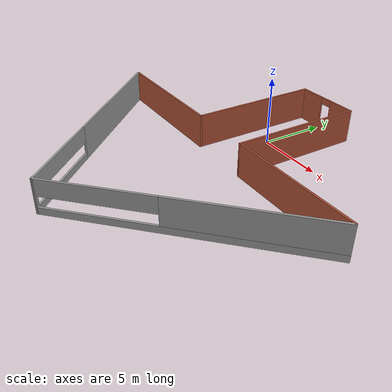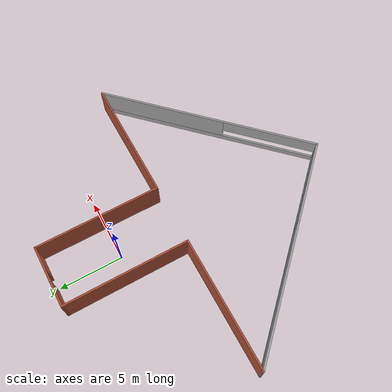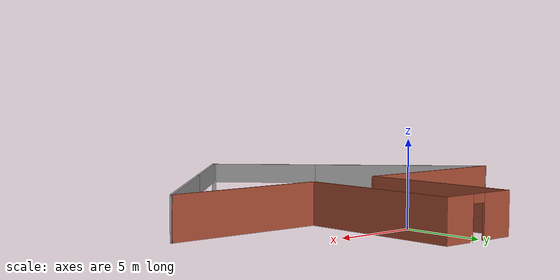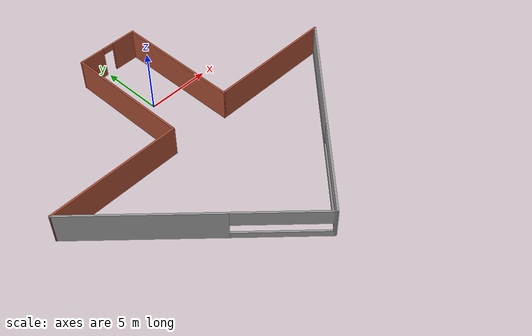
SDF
<?xml version='1.0'?>
<sdf version='1.6'>
  <model name='FOR_PROJECT_1'>
    <pose frame=''>0.143217 -6.05993 0 0 -0 0</pose>
    <link name='Wall_12'>
      <collision name='Wall_12_Collision'>
        <geometry>
          <box>
            <size>10 0.15 2.5</size>
          </box>
        </geometry>
        <pose frame=''>0 0 1.25 0 -0 0</pose>
      </collision>
      <visual name='Wall_12_Visual'>
        <pose frame=''>0 0 1.25 0 -0 0</pose>
        <geometry>
          <box>
            <size>10 0.15 2.5</size>
          </box>
        </geometry>
        <material>
          <script>
            <uri>file://media/materials/scripts/gazebo.material</uri>
            <name>Gazebo/Bricks</name>
          </script>
          <ambient>1 1 1 1</ambient>
        </material>
        <meta>
          <layer>0</layer>
        </meta>
      </visual>
      <pose frame=''>7.5816 1.45376 0 0 -0 0</pose>
    </link>
    <link name='Wall_19'>
      <collision name='Wall_19_Collision'>
        <geometry>
          <box>
            <size>10 0.15 2.5</size>
          </box>
        </geometry>
        <pose frame=''>0 0 1.25 0 -0 0</pose>
      </collision>
      <visual name='Wall_19_Visual'>
        <pose frame=''>0 0 1.25 0 -0 0</pose>
        <geometry>
          <box>
            <size>10 0.15 2.5</size>
          </box>
        </geometry>
        <material>
          <script>
            <uri>file://media/materials/scripts/gazebo.material</uri>
            <name>Gazebo/Bricks</name>
          </script>
          <ambient>1 1 1 1</ambient>
        </material>
        <meta>
          <layer>0</layer>
        </meta>
      </visual>
      <pose frame=''>-2.1934 6.37876 0 0 0 -1.5708</pose>
    </link>
    <link name='Wall_22'>
      <collision name='Wall_22_Collision'>
        <geometry>
          <box>
            <size>10.5 0.15 2.5</size>
          </box>
        </geometry>
        <pose frame=''>0 0 1.25 0 -0 0</pose>
      </collision>
      <visual name='Wall_22_Visual'>
        <pose frame=''>0 0 1.25 0 -0 0</pose>
        <geometry>
          <box>
            <size>10.5 0.15 2.5</size>
          </box>
        </geometry>
        <material>
          <script>
            <uri>file://media/materials/scripts/gazebo.material</uri>
            <name>Gazebo/Bricks</name>
          </script>
          <ambient>1 1 1 1</ambient>
        </material>
        <meta>
          <layer>0</layer>
        </meta>
      </visual>
      <pose frame=''>-7.3684 1.45376 0 0 -0 3.14159</pose>
    </link>
    <link name='Wall_24'>
      <pose frame=''>-6.28521 -4.90947 0 0 0 -0.79372</pose>
      <visual name='Wall_24_Visual_0'>
        <pose frame=''>-3.43027 0 1.25 0 -0 0</pose>
        <geometry>
          <box>
            <size>11.1395 0.15 2.5</size>
          </box>
        </geometry>
        <material>
          <script>
            <uri>file://media/materials/scripts/gazebo.material</uri>
            <name>Gazebo/Grey</name>
          </script>
          <ambient>0 0 0 1</ambient>
        </material>
        <meta>
          <layer>0</layer>
        </meta>
      </visual>
      <collision name='Wall_24_Collision_0'>
        <geometry>
          <box>
            <size>11.1395 0.15 2.5</size>
          </box>
        </geometry>
        <pose frame=''>-3.43027 0 1.25 0 -0 0</pose>
      </collision>
      <visual name='Wall_24_Visual_1'>
        <pose frame=''>5.56973 0 0.25 0 -0 0</pose>
        <geometry>
          <box>
            <size>6.86053 0.15 0.5</size>
          </box>
        </geometry>
        <material>
          <script>
            <uri>file://media/materials/scripts/gazebo.material</uri>
            <name>Gazebo/Grey</name>
          </script>
          <ambient>0 0 0 1</ambient>
        </material>
        <meta>
          <layer>0</layer>
        </meta>
      </visual>
      <collision name='Wall_24_Collision_1'>
        <geometry>
          <box>
            <size>6.86053 0.15 0.5</size>
          </box>
        </geometry>
        <pose frame=''>5.56973 0 0.25 0 -0 0</pose>
      </collision>
      <visual name='Wall_24_Visual_2'>
        <pose frame=''>8.87829 0 1.5 0 -0 0</pose>
        <geometry>
          <box>
            <size>0.243411 0.15 2</size>
          </box>
        </geometry>
        <material>
          <script>
            <uri>file://media/materials/scripts/gazebo.material</uri>
            <name>Gazebo/Grey</name>
          </script>
          <ambient>0 0 0 1</ambient>
        </material>
        <meta>
          <layer>0</layer>
        </meta>
      </visual>
      <collision name='Wall_24_Collision_2'>
        <geometry>
          <box>
            <size>0.243411 0.15 2</size>
          </box>
        </geometry>
        <pose frame=''>8.87829 0 1.5 0 -0 0</pose>
      </collision>
      <visual name='Wall_24_Visual_3'>
        <pose frame=''>5.44803 0 1.9 0 -0 0</pose>
        <geometry>
          <box>
            <size>6.61712 0.15 1.2</size>
          </box>
        </geometry>
        <material>
          <script>
            <uri>file://media/materials/scripts/gazebo.material</uri>
            <name>Gazebo/Grey</name>
          </script>
          <ambient>0 0 0 1</ambient>
        </material>
        <meta>
          <layer>0</layer>
        </meta>
      </visual>
      <collision name='Wall_24_Collision_3'>
        <geometry>
          <box>
            <size>6.61712 0.15 1.2</size>
          </box>
        </geometry>
        <pose frame=''>5.44803 0 1.9 0 -0 0</pose>
      </collision>
    </link>
    <link name='Wall_29'>
      <pose frame=''>6.25819 -4.92254 0 0 -0 0.790538</pose>
      <visual name='Wall_29_Visual_0'>
        <pose frame=''>-8.97371 0 1.25 0 -0 0</pose>
        <geometry>
          <box>
            <size>0.07191 0.15 2.5</size>
          </box>
        </geometry>
        <material>
          <script>
            <uri>file://media/materials/scripts/gazebo.material</uri>
            <name>Gazebo/Grey</name>
          </script>
          <ambient>0 0 0 1</ambient>
        </material>
        <meta>
          <layer>0</layer>
        </meta>
      </visual>
      <collision name='Wall_29_Collision_0'>
        <geometry>
          <box>
            <size>0.07191 0.15 2.5</size>
          </box>
        </geometry>
        <pose frame=''>-8.97371 0 1.25 0 -0 0</pose>
      </collision>
      <visual name='Wall_29_Visual_1'>
        <pose frame=''>0.035955 0 0.25 0 -0 0</pose>
        <geometry>
          <box>
            <size>17.9474 0.15 0.5</size>
          </box>
        </geometry>
        <material>
          <script>
            <uri>file://media/materials/scripts/gazebo.material</uri>
            <name>Gazebo/Grey</name>
          </script>
          <ambient>0 0 0 1</ambient>
        </material>
        <meta>
          <layer>0</layer>
        </meta>
      </visual>
      <collision name='Wall_29_Collision_1'>
        <geometry>
          <box>
            <size>17.9474 0.15 0.5</size>
          </box>
        </geometry>
        <pose frame=''>0.035955 0 0.25 0 -0 0</pose>
      </collision>
      <visual name='Wall_29_Visual_2'>
        <pose frame=''>3.82569 0 1.5 0 -0 0</pose>
        <geometry>
          <box>
            <size>10.368 0.15 2</size>
          </box>
        </geometry>
        <material>
          <script>
            <uri>file://media/materials/scripts/gazebo.material</uri>
            <name>Gazebo/Grey</name>
          </script>
          <ambient>0 0 0 1</ambient>
        </material>
        <meta>
          <layer>0</layer>
        </meta>
      </visual>
      <collision name='Wall_29_Collision_2'>
        <geometry>
          <box>
            <size>10.368 0.15 2</size>
          </box>
        </geometry>
        <pose frame=''>3.82569 0 1.5 0 -0 0</pose>
      </collision>
      <visual name='Wall_29_Visual_3'>
        <pose frame=''>-5.14803 0 1.9 0 -0 0</pose>
        <geometry>
          <box>
            <size>7.57946 0.15 1.2</size>
          </box>
        </geometry>
        <material>
          <script>
            <uri>file://media/materials/scripts/gazebo.material</uri>
            <name>Gazebo/Grey</name>
          </script>
          <ambient>0 0 0 1</ambient>
        </material>
        <meta>
          <layer>0</layer>
        </meta>
      </visual>
      <collision name='Wall_29_Collision_3'>
        <geometry>
          <box>
            <size>7.57946 0.15 1.2</size>
          </box>
        </geometry>
        <pose frame=''>-5.14803 0 1.9 0 -0 0</pose>
      </collision>
    </link>
    <link name='Wall_4'>
      <pose frame=''>0.2316 11.3038 0 0 -0 3.14159</pose>
      <visual name='Wall_4_Visual_0'>
        <pose frame=''>-1.47869 0 1.25 0 -0 0</pose>
        <geometry>
          <box>
            <size>2.04262 0.15 2.5</size>
          </box>
        </geometry>
        <material>
          <script>
            <uri>file://media/materials/scripts/gazebo.material</uri>
            <name>Gazebo/Bricks</name>
          </script>
          <ambient>1 1 1 1</ambient>
        </material>
        <meta>
          <layer>0</layer>
        </meta>
      </visual>
      <collision name='Wall_4_Collision_0'>
        <geometry>
          <box>
            <size>2.04262 0.15 2.5</size>
          </box>
        </geometry>
        <pose frame=''>-1.47869 0 1.25 0 -0 0</pose>
      </collision>
      <visual name='Wall_4_Visual_1'>
        <pose frame=''>1.47131 0 1.25 0 -0 0</pose>
        <geometry>
          <box>
            <size>2.05738 0.15 2.5</size>
          </box>
        </geometry>
        <material>
          <script>
            <uri>file://media/materials/scripts/gazebo.material</uri>
            <name>Gazebo/Bricks</name>
          </script>
          <ambient>1 1 1 1</ambient>
        </material>
        <meta>
          <layer>0</layer>
        </meta>
      </visual>
      <collision name='Wall_4_Collision_1'>
        <geometry>
          <box>
            <size>2.05738 0.15 2.5</size>
          </box>
        </geometry>
        <pose frame=''>1.47131 0 1.25 0 -0 0</pose>
      </collision>
      <visual name='Wall_4_Visual_2'>
        <pose frame=''>-0.007378 0 2.25 0 -0 0</pose>
        <geometry>
          <box>
            <size>0.9 0.15 0.5</size>
          </box>
        </geometry>
        <material>
          <script>
            <uri>file://media/materials/scripts/gazebo.material</uri>
            <name>Gazebo/Bricks</name>
          </script>
          <ambient>1 1 1 1</ambient>
        </material>
        <meta>
          <layer>0</layer>
        </meta>
      </visual>
      <collision name='Wall_4_Collision_2'>
        <geometry>
          <box>
            <size>0.9 0.15 0.5</size>
          </box>
        </geometry>
        <pose frame=''>-0.007378 0 2.25 0 -0 0</pose>
      </collision>
    </link>
    <link name='Wall_8'>
      <collision name='Wall_8_Collision'>
        <geometry>
          <box>
            <size>10 0.15 2.5</size>
          </box>
        </geometry>
        <pose frame=''>0 0 1.25 0 -0 0</pose>
      </collision>
      <visual name='Wall_8_Visual'>
        <pose frame=''>0 0 1.25 0 -0 0</pose>
        <geometry>
          <box>
            <size>10 0.15 2.5</size>
          </box>
        </geometry>
        <material>
          <script>
            <uri>file://media/materials/scripts/gazebo.material</uri>
            <name>Gazebo/Bricks</name>
          </script>
          <ambient>1 1 1 1</ambient>
        </material>
        <meta>
          <layer>0</layer>
        </meta>
      </visual>
      <pose frame=''>2.6566 6.37876 0 0 0 -1.5708</pose>
    </link>
    <static>1</static>
  </model>
</sdf>
